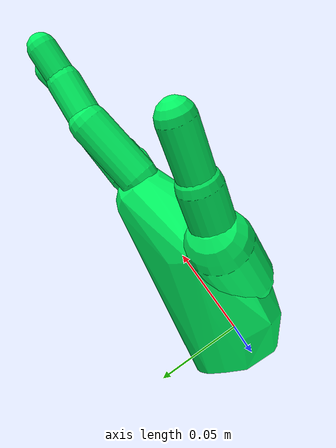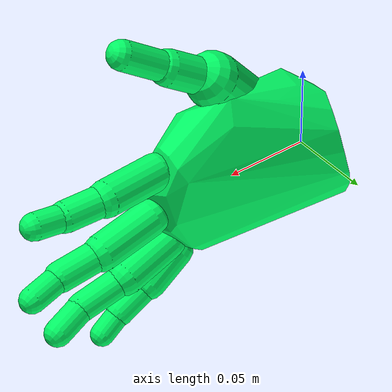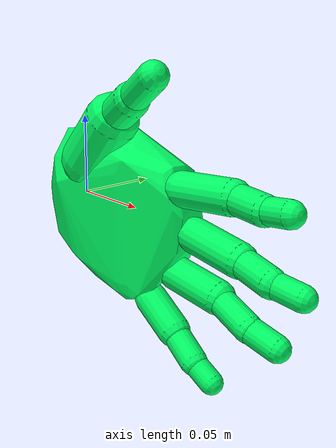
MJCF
<mujoco model="mano_hand">
  <compiler autolimits="true" angle="radian"/>
  <default>
    <geom solimp="0.5 0.95 0.001" solref="0.04 1"/>
  </default>
  <asset>
    <mesh name="mano_bone_0" file="meshes/mano_bone_0.obj"/>
    <mesh name="mano_bone_1" file="meshes/mano_bone_1.obj"/>
    <mesh name="mano_bone_2" file="meshes/mano_bone_2.obj"/>
    <mesh name="mano_bone_3" file="meshes/mano_bone_3.obj"/>
    <mesh name="mano_bone_4" file="meshes/mano_bone_4.obj"/>
    <mesh name="mano_bone_5" file="meshes/mano_bone_5.obj"/>
    <mesh name="mano_bone_6" file="meshes/mano_bone_6.obj"/>
    <mesh name="mano_bone_7" file="meshes/mano_bone_7.obj"/>
    <mesh name="mano_bone_8" file="meshes/mano_bone_8.obj"/>
    <mesh name="mano_bone_9" file="meshes/mano_bone_9.obj"/>
    <mesh name="mano_bone_10" file="meshes/mano_bone_10.obj"/>
    <mesh name="mano_bone_11" file="meshes/mano_bone_11.obj"/>
    <mesh name="mano_bone_12" file="meshes/mano_bone_12.obj"/>
    <mesh name="mano_bone_13" file="meshes/mano_bone_13.obj"/>
    <mesh name="mano_bone_14" file="meshes/mano_bone_14.obj"/>
    <mesh name="mano_bone_15" file="meshes/mano_bone_15.obj"/>
  </asset>
  <worldbody>
    <body name="mano_body_0" pos="0 0 0">
      <joint name="wrist_tx" type="slide" axis="1 0 0" pos="0 0 0" limited="false" damping="5.0"/>
      <joint name="wrist_ty" type="slide" axis="0 1 0" pos="0 0 0" limited="false" damping="5.0"/>
      <joint name="wrist_tz" type="slide" axis="0 0 1" pos="0 0 0" limited="false" damping="5.0"/>
      <joint name="wrist_rot" type="ball" pos="0 0 0" limited="false" damping="5.0" armature="0.01"/>
      <inertial pos="0.0386409 -0.00291493 0.000663152" mass="0.303712" fullinertia="2.043050e-04 4.256486e-04 3.219984e-04 1.802327e-05 -1.893711e-06 -3.803063e-07"/>
      <geom type="mesh" mesh="mano_bone_0" pos="0.0431646 -0.00558931 -0.00523476" rgba="0.000 1.000 0.400 1" priority="1" solimp="0.005 0.9 0.025 0.5 2"/>
    <body name="mano_body_1" pos="0.119194 -0.00254749 0.024576">
      <joint name="mano_joint_1" type="ball" pos="-0.0203719 -0.0028744 -0.00143131" limited="false" damping="0.01" armature="0.001"/>
      <inertial pos="0.000650446 0.000798635 0.000200566" mass="0.00941339" fullinertia="5.379398e-07 1.069968e-06 1.122376e-06 -2.196253e-08 2.903590e-08 8.062197e-09"/>
      <geom type="capsule" fromto="-0.0203719 -0.0028744 -0.00143131 0.0167673 0.00133308 0.000695124" size="0.0106755" rgba="0.000 1.000 0.400 1"/>
    <body name="mano_body_2" pos="0.0306123 0.000539373 0.000874409">
      <joint name="mano_joint_2" type="ball" pos="-0.0138451 0.000793704 -0.000179285" limited="false" damping="0.01" armature="0.001"/>
      <inertial pos="-0.000973822 0.000468247 -0.00057189" mass="0.0047437" fullinertia="2.030256e-07 3.159512e-07 2.913437e-07 2.235354e-08 2.079174e-08 2.948350e-09"/>
      <geom type="capsule" fromto="-0.0138451 0.000793704 -0.000179285 0.0117068 -0.00150281 -0.00129997" size="0.00906903" rgba="0.000 1.000 0.400 1"/>
    <body name="mano_body_3" pos="0.0291722 -0.00310751 -0.00263645">
      <joint name="mano_joint_3" type="ball" pos="-0.0174654 0.00160471 0.00133648" limited="false" damping="0.01" armature="0.001"/>
      <inertial pos="-0.00442339 0.000324665 0.000625425" mass="0.00333969" fullinertia="9.323459e-08 2.178530e-07 2.025120e-07 1.191903e-08 1.172349e-08 -7.213671e-09"/>
      <geom type="capsule" fromto="-0.0174654 0.00160471 0.00133648 0.00198209 0.000727838 0.00379495" size="0.00791911" rgba="0.000 1.000 0.400 1"/>
    </body>
    </body>
    </body>
    <body name="mano_body_4" pos="0.124442 -0.000139222 -0.0068353">
      <joint name="mano_joint_4" type="ball" pos="-0.0186127 -0.00154596 0.00348779" limited="false" damping="0.01" armature="0.001"/>
      <inertial pos="-0.00274065 0.00082817 0.000296873" mass="0.0106076" fullinertia="6.523338e-07 1.527096e-06 1.414520e-06 -2.742873e-08 1.897804e-07 1.429932e-09"/>
      <geom type="capsule" fromto="-0.0186127 -0.00154596 0.00348779 0.0162326 4.23916e-05 -0.00290156" size="0.0105826" rgba="0.000 1.000 0.400 1"/>
    <body name="mano_body_5" pos="0.0331107 -0.00134688 -0.00628183">
      <joint name="mano_joint_5" type="ball" pos="-0.016878 0.00138927 0.00338027" limited="false" damping="0.01" armature="0.001"/>
      <inertial pos="-0.0019061 0.000658834 0.000525462" mass="0.00435413" fullinertia="1.802651e-07 2.664821e-07 2.571500e-07 2.980058e-08 1.676241e-08 -1.096303e-08"/>
      <geom type="capsule" fromto="-0.016878 0.00138927 0.00338027 0.00930913 -0.00101302 -0.00181649" size="0.008946" rgba="0.000 1.000 0.400 1"/>
    <body name="mano_body_6" pos="0.0280938 -0.00120461 -0.00578484">
      <joint name="mano_joint_6" type="ball" pos="-0.0187847 0.00019159 0.00396835" limited="false" damping="0.01" armature="0.001"/>
      <inertial pos="-0.0031141 -0.000563042 0.00107531" mass="0.00308171" fullinertia="8.889449e-08 1.776768e-07 1.634168e-07 -5.136913e-09 2.052758e-08 -2.908080e-09"/>
      <geom type="capsule" fromto="-0.0187847 0.00019159 0.00396835 0.00172221 0.00320701 0.000426444" size="0.00767826" rgba="0.000 1.000 0.400 1"/>
    </body>
    </body>
    </body>
    <body name="mano_body_7" pos="0.0884595 -0.0119999 -0.0556313">
      <joint name="mano_joint_7" type="ball" pos="-0.00897066 -0.000350363 0.00860772" limited="false" damping="0.01" armature="0.001"/>
      <inertial pos="0.000219792 0.000973793 0.000465115" mass="0.00491129" fullinertia="2.512347e-07 3.246094e-07 2.776610e-07 -1.199495e-08 5.668034e-08 6.928058e-09"/>
      <geom type="capsule" fromto="-0.00897066 -0.000350363 0.00860772 0.0113594 6.22505e-05 -0.00591801" size="0.0097246" rgba="0.000 1.000 0.400 1"/>
    <body name="mano_body_8" pos="0.0218642 0.000516577 -0.0131604">
      <joint name="mano_joint_8" type="ball" pos="-0.0105048 -0.000454326 0.00724242" limited="false" damping="0.01" armature="0.001"/>
      <inertial pos="-0.00111329 0.000648706 -3.10612e-05" mass="0.00346773" fullinertia="1.346070e-07 1.970846e-07 1.739070e-07 1.523068e-08 3.585639e-08 -1.625947e-08"/>
      <geom type="capsule" fromto="-0.0105048 -0.000454326 0.00724242 0.00890074 -0.00220233 -0.0053534" size="0.00806354" rgba="0.000 1.000 0.400 1"/>
    <body name="mano_body_9" pos="0.0224935 -0.0038644 -0.0130908">
      <joint name="mano_joint_9" type="ball" pos="-0.0135928 0.00166207 0.00773736" limited="false" damping="0.01" armature="0.001"/>
      <inertial pos="-0.00239558 -2.19941e-05 0.00119521" mass="0.00201688" fullinertia="5.095045e-08 8.466450e-08 7.027480e-08 3.199931e-09 1.495411e-08 -2.544482e-09"/>
      <geom type="capsule" fromto="-0.0135928 0.00166207 0.00773736 -0.000112909 0.00294765 -0.000884979" size="0.00701234" rgba="0.000 1.000 0.400 1"/>
    </body>
    </body>
    </body>
    <body name="mano_body_10" pos="0.105235 -0.000629523 -0.0301149">
      <joint name="mano_joint_10" type="ball" pos="-0.0129402 -0.00359201 0.00118619" limited="false" damping="0.01" armature="0.001"/>
      <inertial pos="0.000615076 0.000568741 -0.000282795" mass="0.00834476" fullinertia="4.969998e-07 8.420704e-07 8.242538e-07 -1.938774e-08 1.188858e-07 7.615593e-09"/>
      <geom type="capsule" fromto="-0.0129402 -0.00359201 0.00118619 0.0192194 0.000212603 -0.00599628" size="0.0104165" rgba="0.000 1.000 0.400 1"/>
    <body name="mano_body_11" pos="0.0330519 -0.00110442 -0.0108127">
      <joint name="mano_joint_11" type="ball" pos="-0.0138325 0.00131702 0.00481639" limited="false" damping="0.01" armature="0.001"/>
      <inertial pos="-0.000787256 0.000550953 -0.000204251" mass="0.00588668" fullinertia="2.704928e-07 5.566225e-07 5.392724e-07 6.734781e-08 9.185454e-08 -2.420566e-08"/>
      <geom type="capsule" fromto="-0.0138325 0.00131702 0.00481639 0.0141191 -0.00194082 -0.00460121" size="0.00839982" rgba="0.000 1.000 0.400 1"/>
    <body name="mano_body_12" pos="0.0317688 -0.00208961 -0.0104287">
      <joint name="mano_joint_12" type="ball" pos="-0.0176497 0.000148789 0.00582745" limited="false" damping="0.01" armature="0.001"/>
      <inertial pos="-0.00317242 -0.000296141 0.00126585" mass="0.00318595" fullinertia="9.350457e-08 2.084433e-07 1.842844e-07 -7.087288e-09 3.662927e-08 -1.923017e-09"/>
      <geom type="capsule" fromto="-0.0176497 0.000148789 0.00582745 0.00103384 0.00344571 -0.000755953" size="0.00793055" rgba="0.000 1.000 0.400 1"/>
    </body>
    </body>
    </body>
    <body name="mano_body_13" pos="0.0355526 -0.024274 0.0456698">
      <joint name="mano_joint_13" type="ball" pos="-0.00818481 0.00584787 -0.0161819" limited="false" damping="0.01" armature="0.001"/>
      <inertial pos="-0.00218132 0.00241989 -0.000937875" mass="0.01654" fullinertia="1.936354e-06 2.851294e-06 2.828340e-06 1.135377e-07 -2.756857e-07 -5.459116e-07"/>
      <geom type="capsule" fromto="-0.00818481 0.00584787 -0.0161819 0.0150342 0.00696099 0.0114961" size="0.0162871" rgba="0.000 1.000 0.400 1"/>
    <body name="mano_body_14" pos="0.0293024 0.00426279 0.0218863">
      <joint name="mano_joint_14" type="ball" pos="-0.0142681 0.00269821 -0.0103901" limited="false" damping="0.01" armature="0.001"/>
      <inertial pos="-0.00165057 0.000565656 -0.00056142" mass="0.00826524" fullinertia="5.127106e-07 7.948754e-07 7.956173e-07 5.647792e-08 -7.568239e-08 3.570627e-08"/>
      <geom type="capsule" fromto="-0.0142681 0.00269821 -0.0103901 0.0117544 -0.00352299 0.00561856" size="0.010719" rgba="0.000 1.000 0.400 1"/>
    <body name="mano_body_15" pos="0.0320468 -0.00857623 0.0188136">
      <joint name="mano_joint_15" type="ball" pos="-0.0202924 0.00505324 -0.013195" limited="false" damping="0.01" armature="0.001"/>
      <inertial pos="-0.00594992 0.00153621 -0.00332825" mass="0.00812965" fullinertia="5.808422e-07 9.351375e-07 8.317538e-07 1.075249e-07 -2.537960e-07 9.336305e-08"/>
      <geom type="capsule" fromto="-0.0202924 0.00505324 -0.013195 0.00584138 -0.00108364 0.00355364" size="0.00884576" rgba="0.000 1.000 0.400 1"/>
    </body>
    </body>
    </body>
    </body>
  </worldbody>
  <actuator>
    <position name="wrist_motor_tx" joint="wrist_tx" kp="300.0" dampratio="1.0"/>
    <position name="wrist_motor_ty" joint="wrist_ty" kp="300.0" dampratio="1.0"/>
    <position name="wrist_motor_tz" joint="wrist_tz" kp="300.0" dampratio="1.0"/>
    <position name="wrist_motor_rx" joint="wrist_rot" gear="1 0 0" kp="50.0" dampratio="1.5"/>
    <position name="wrist_motor_ry" joint="wrist_rot" gear="0 1 0" kp="50.0" dampratio="1.5"/>
    <position name="wrist_motor_rz" joint="wrist_rot" gear="0 0 1" kp="50.0" dampratio="1.5"/>
    <position name="mano_motor_1_x" joint="mano_joint_1" gear="1 0 0" kp="30.0" dampratio="1.0"/>
    <position name="mano_motor_1_y" joint="mano_joint_1" gear="0 1 0" kp="30.0" dampratio="1.0"/>
    <position name="mano_motor_1_z" joint="mano_joint_1" gear="0 0 1" kp="30.0" dampratio="1.0"/>
    <position name="mano_motor_2_x" joint="mano_joint_2" gear="1 0 0" kp="30.0" dampratio="1.0"/>
    <position name="mano_motor_2_y" joint="mano_joint_2" gear="0 1 0" kp="30.0" dampratio="1.0"/>
    <position name="mano_motor_2_z" joint="mano_joint_2" gear="0 0 1" kp="30.0" dampratio="1.0"/>
    <position name="mano_motor_3_x" joint="mano_joint_3" gear="1 0 0" kp="30.0" dampratio="1.0"/>
    <position name="mano_motor_3_y" joint="mano_joint_3" gear="0 1 0" kp="30.0" dampratio="1.0"/>
    <position name="mano_motor_3_z" joint="mano_joint_3" gear="0 0 1" kp="30.0" dampratio="1.0"/>
    <position name="mano_motor_4_x" joint="mano_joint_4" gear="1 0 0" kp="30.0" dampratio="1.0"/>
    <position name="mano_motor_4_y" joint="mano_joint_4" gear="0 1 0" kp="30.0" dampratio="1.0"/>
    <position name="mano_motor_4_z" joint="mano_joint_4" gear="0 0 1" kp="30.0" dampratio="1.0"/>
    <position name="mano_motor_5_x" joint="mano_joint_5" gear="1 0 0" kp="30.0" dampratio="1.0"/>
    <position name="mano_motor_5_y" joint="mano_joint_5" gear="0 1 0" kp="30.0" dampratio="1.0"/>
    <position name="mano_motor_5_z" joint="mano_joint_5" gear="0 0 1" kp="30.0" dampratio="1.0"/>
    <position name="mano_motor_6_x" joint="mano_joint_6" gear="1 0 0" kp="30.0" dampratio="1.0"/>
    <position name="mano_motor_6_y" joint="mano_joint_6" gear="0 1 0" kp="30.0" dampratio="1.0"/>
    <position name="mano_motor_6_z" joint="mano_joint_6" gear="0 0 1" kp="30.0" dampratio="1.0"/>
    <position name="mano_motor_7_x" joint="mano_joint_7" gear="1 0 0" kp="30.0" dampratio="1.0"/>
    <position name="mano_motor_7_y" joint="mano_joint_7" gear="0 1 0" kp="30.0" dampratio="1.0"/>
    <position name="mano_motor_7_z" joint="mano_joint_7" gear="0 0 1" kp="30.0" dampratio="1.0"/>
    <position name="mano_motor_8_x" joint="mano_joint_8" gear="1 0 0" kp="30.0" dampratio="1.0"/>
    <position name="mano_motor_8_y" joint="mano_joint_8" gear="0 1 0" kp="30.0" dampratio="1.0"/>
    <position name="mano_motor_8_z" joint="mano_joint_8" gear="0 0 1" kp="30.0" dampratio="1.0"/>
    <position name="mano_motor_9_x" joint="mano_joint_9" gear="1 0 0" kp="30.0" dampratio="1.0"/>
    <position name="mano_motor_9_y" joint="mano_joint_9" gear="0 1 0" kp="30.0" dampratio="1.0"/>
    <position name="mano_motor_9_z" joint="mano_joint_9" gear="0 0 1" kp="30.0" dampratio="1.0"/>
    <position name="mano_motor_10_x" joint="mano_joint_10" gear="1 0 0" kp="30.0" dampratio="1.0"/>
    <position name="mano_motor_10_y" joint="mano_joint_10" gear="0 1 0" kp="30.0" dampratio="1.0"/>
    <position name="mano_motor_10_z" joint="mano_joint_10" gear="0 0 1" kp="30.0" dampratio="1.0"/>
    <position name="mano_motor_11_x" joint="mano_joint_11" gear="1 0 0" kp="30.0" dampratio="1.0"/>
    <position name="mano_motor_11_y" joint="mano_joint_11" gear="0 1 0" kp="30.0" dampratio="1.0"/>
    <position name="mano_motor_11_z" joint="mano_joint_11" gear="0 0 1" kp="30.0" dampratio="1.0"/>
    <position name="mano_motor_12_x" joint="mano_joint_12" gear="1 0 0" kp="30.0" dampratio="1.0"/>
    <position name="mano_motor_12_y" joint="mano_joint_12" gear="0 1 0" kp="30.0" dampratio="1.0"/>
    <position name="mano_motor_12_z" joint="mano_joint_12" gear="0 0 1" kp="30.0" dampratio="1.0"/>
    <position name="mano_motor_13_x" joint="mano_joint_13" gear="1 0 0" kp="30.0" dampratio="1.0"/>
    <position name="mano_motor_13_y" joint="mano_joint_13" gear="0 1 0" kp="30.0" dampratio="1.0"/>
    <position name="mano_motor_13_z" joint="mano_joint_13" gear="0 0 1" kp="30.0" dampratio="1.0"/>
    <position name="mano_motor_14_x" joint="mano_joint_14" gear="1 0 0" kp="30.0" dampratio="1.0"/>
    <position name="mano_motor_14_y" joint="mano_joint_14" gear="0 1 0" kp="30.0" dampratio="1.0"/>
    <position name="mano_motor_14_z" joint="mano_joint_14" gear="0 0 1" kp="30.0" dampratio="1.0"/>
    <position name="mano_motor_15_x" joint="mano_joint_15" gear="1 0 0" kp="30.0" dampratio="1.0"/>
    <position name="mano_motor_15_y" joint="mano_joint_15" gear="0 1 0" kp="30.0" dampratio="1.0"/>
    <position name="mano_motor_15_z" joint="mano_joint_15" gear="0 0 1" kp="30.0" dampratio="1.0"/>
  </actuator>
</mujoco>
